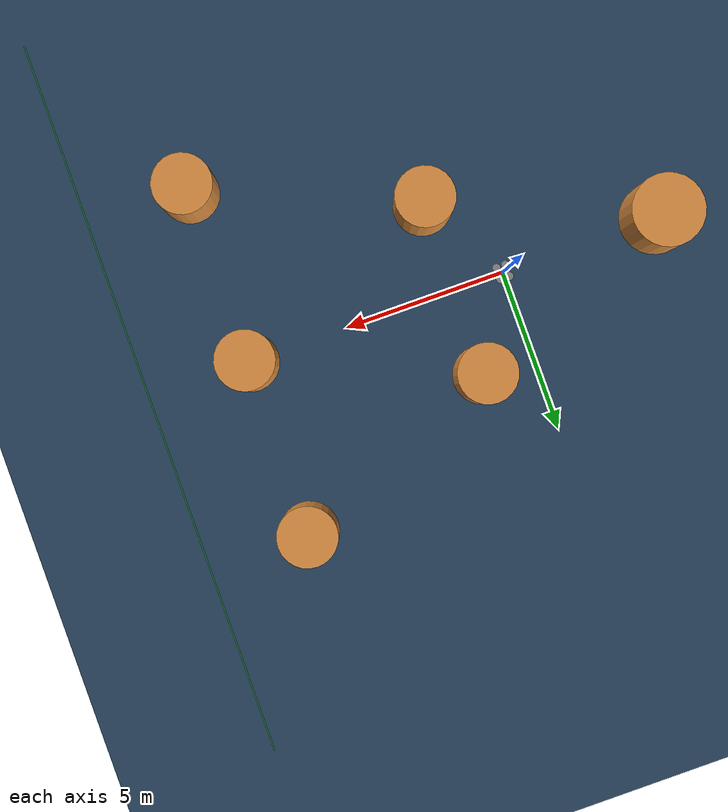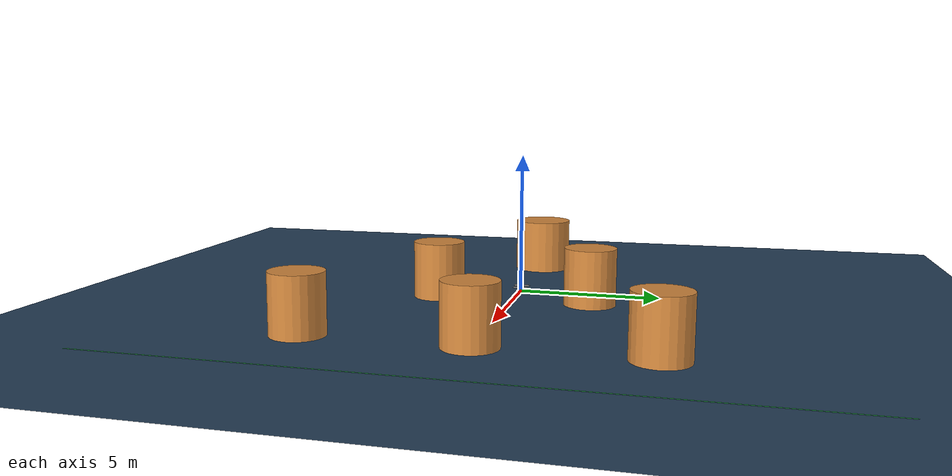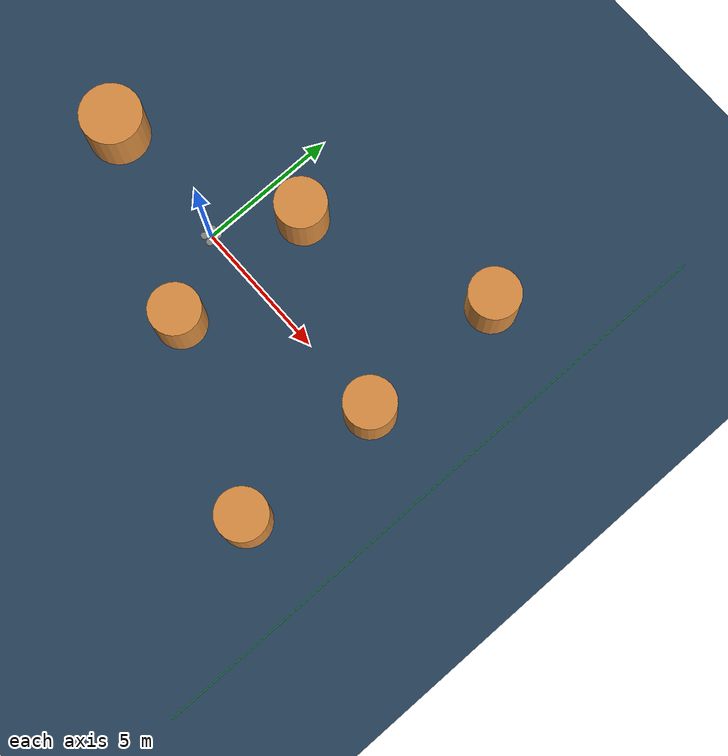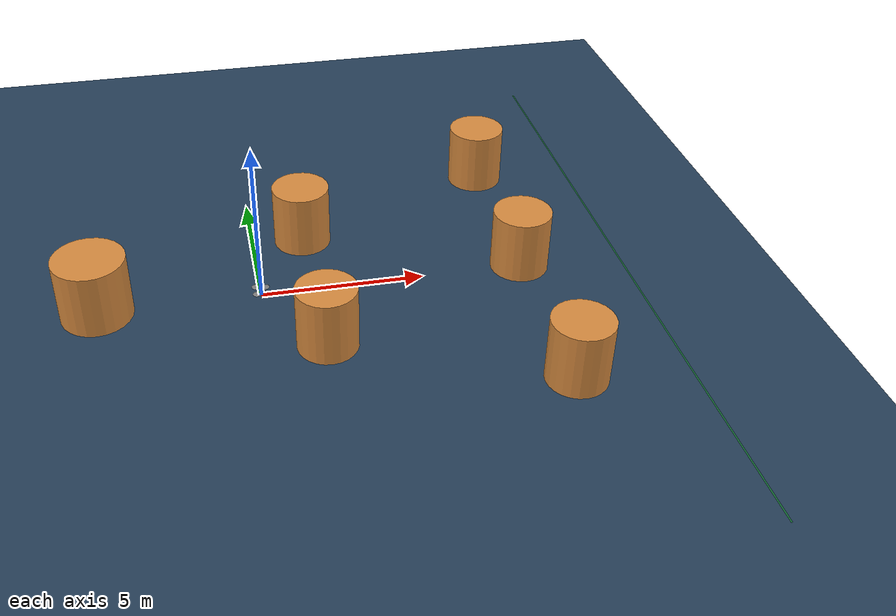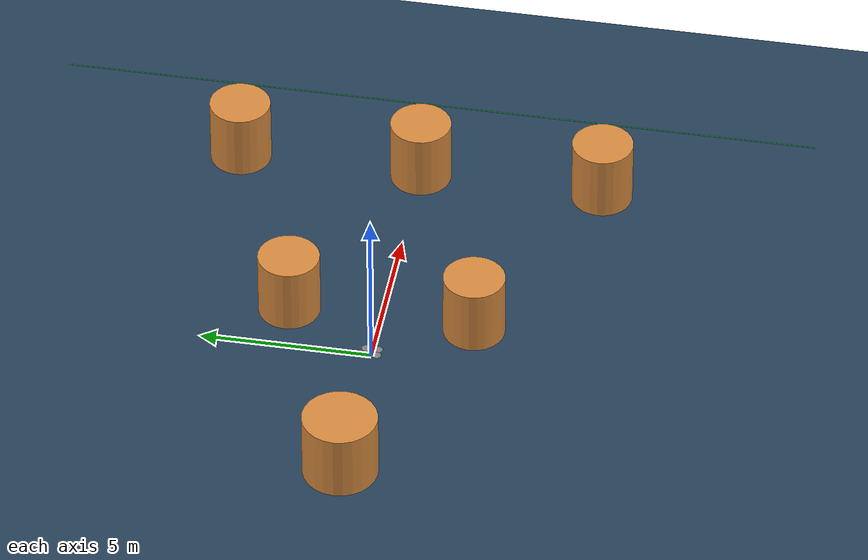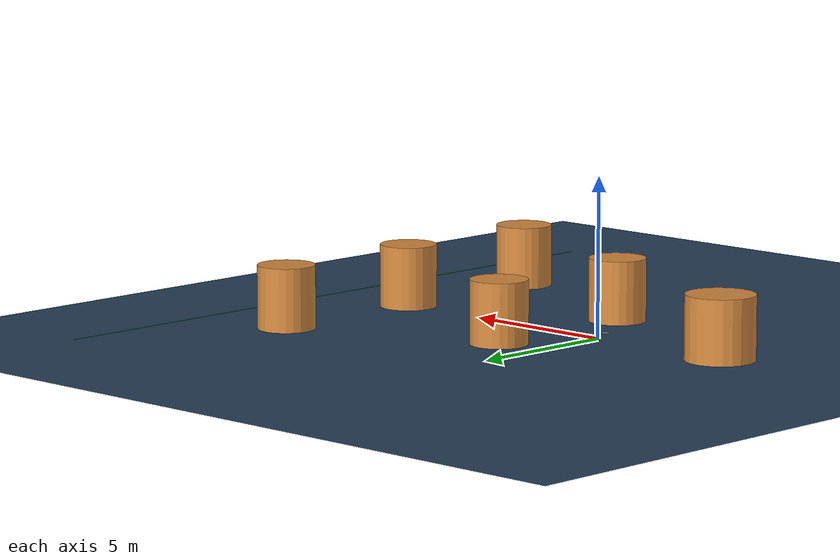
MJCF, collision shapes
<mujoco model="UAV Avoiding-Pillars Scene (pillars_v2, scale 36)">
  <include file="../quadrotor_modified.xml"/>
  <compiler meshdir="../assets" texturedir="../assets"/>

  <visual>
    <headlight diffuse="0.6 0.6 0.6" ambient="0.3 0.3 0.3" specular="0 0 0"/>
    <rgba haze="0.15 0.25 0.35 1"/>
    <global azimuth="120" elevation="-20"/>
  </visual>

  <asset>
    <texture type="skybox" builtin="gradient" rgb1="0.3 0.5 0.7" rgb2="0 0 0" width="32" height="32"/>
    <texture type="2d" name="groundplane" builtin="checker" mark="edge"
             rgb1="0.2 0.3 0.4" rgb2="0.1 0.2 0.3" markrgb="0.8 0.8 0.8"
             width="300" height="300"/>
    <material name="groundplane" texture="groundplane" texuniform="true" texrepeat="5 5"/>
    <material name="pillar" rgba="0.85 0.55 0.25 1"/>
    <material name="finish" rgba="0 1 0 0.3"/>
  </asset>

  <worldbody>
    <light name="overhead" pos="0 0 8" dir="0 0 -1" diffuse="0.8 0.8 0.8"/>
    <geom name="floor" type="plane" size="16.1 16.1 0.05" material="groundplane"/>

    <!-- 6 pillars = the avoiding obstacles (l1 / l2_top l2_bottom / l3_top l3_mid l3_bottom), scaled x36 -->
    <geom name="pillar_l1_obs" type="cylinder" pos="-4.8600 -0.0000 1.000" size="1.0800 1.000" material="pillar"/>
    <geom name="pillar_l2_top_obs" type="cylinder" pos="1.6200 2.7000 1.000" size="0.9000 1.000" material="pillar"/>
    <geom name="pillar_l2_bottom_obs" type="cylinder" pos="1.6200 -2.7000 1.000" size="0.9000 1.000" material="pillar"/>
    <geom name="pillar_l3_top_obs" type="cylinder" pos="8.1000 5.4000 1.000" size="0.9000 1.000" material="pillar"/>
    <geom name="pillar_l3_mid_obs" type="cylinder" pos="8.1000 -0.0000 1.000" size="0.9000 1.000" material="pillar"/>
    <geom name="pillar_l3_bottom_obs" type="cylinder" pos="8.1000 -5.4000 1.000" size="0.9000 1.000" material="pillar"/>

    <!-- finish line (visual only, no collision): avoiding y_a = 0.35 -> world X = 11.34 -->
    <geom name="finish_line" type="box" pos="11.3400 0 0.01" size="0.02 11.300 0.005"
          material="finish" contype="0" conaffinity="0"/>
  </worldbody>
</mujoco>

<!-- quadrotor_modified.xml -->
<mujoco model="Skydio X2">
  <compiler autolimits="true" assetdir="assets"/>

  <option timestep="0.01" density="1.225" viscosity="1.8e-5"/>

  <default>
    <default class="x2">
      <geom mass="0"/>
      <motor ctrlrange="0 13"/>
      <mesh scale="0.01 0.01 0.01"/>
      <default class="visual">
        <geom group="2" type="mesh" contype="0" conaffinity="0"/>
      </default>
      <default class="collision">
        <geom group="3" type="box"/>
        <default class="rotor">
          <geom type="ellipsoid" size=".13 .13 .01"/>
        </default>
      </default>
      <site group="5"/>
    </default>
  </default>

  <asset>
    <texture type="2d" file="X2_lowpoly_texture_SpinningProps_1024.png"/>
    <material name="phong3SG" texture="X2_lowpoly_texture_SpinningProps_1024"/>
    <material name="invisible" rgba="0 0 0 0"/>
    <mesh class="x2" file="X2_lowpoly.obj"/>
  </asset>

  <worldbody>
    <light name="spotlight" mode="targetbodycom" target="x2" pos="0 -1 2"/>
    <body name="x2" pos="0 0 0.1" quat="0 0 0 1" childclass="x2">
      <freejoint/>
      <camera name="track" pos="-1 0 .5" xyaxes="0 -1 0 1 0 2"/>
      <camera name="fpv"   pos="0.1 0 0.06" xyaxes="0 -1 0 0 0 1" mode="fixed"/>
      <site name="imu" pos="0 0 .02"/>
      <geom material="phong3SG" mesh="X2_lowpoly" class="visual" quat="0 0 1 1"/>
      <geom class="collision" size=".06 .027 .02" pos=".04 0 .02"/>
      <geom class="collision" size=".06 .027 .02" pos=".04 0 .06"/>
      <geom class="collision" size=".05 .027 .02" pos="-.07 0 .065"/>
      <geom class="collision" size=".023 .017 .01" pos="-.137 .008 .065" quat="1 0 0 1"/>
      <geom name="rotor1" class="rotor" pos="-.14 -.18 .05" mass=".25"/>
      <geom name="rotor2" class="rotor" pos="-.14 .18 .05" mass=".25"/>
      <geom name="rotor3" class="rotor" pos=".14 .18 .08" mass=".25"/>
      <geom name="rotor4" class="rotor" pos=".14 -.18 .08" mass=".25"/>
      <geom size=".16 .04 .02" pos="0 0 0.02" type="ellipsoid" mass=".325" class="visual" material="invisible"/>
      <site name="thrust1" pos="-.14 -.18 .05"/>
      <site name="thrust2" pos="-.14 .18 .05"/>
      <site name="thrust3" pos=".14 .18 .08"/>
      <site name="thrust4" pos=".14 -.18 .08"/>
    </body>
  </worldbody>

  <actuator>
    <motor class="x2" name="thrust1" site="thrust1" gear="0 0 1 0 0 -.0201"/>
    <motor class="x2" name="thrust2" site="thrust2" gear="0 0 1 0 0 .0201"/>
    <motor class="x2" name="thrust3" site="thrust3" gear="0 0 1 0 0 -.0201"/>
    <motor class="x2" name="thrust4" site="thrust4" gear="0 0 1 0 0 .0201"/>
  </actuator>
</mujoco>
